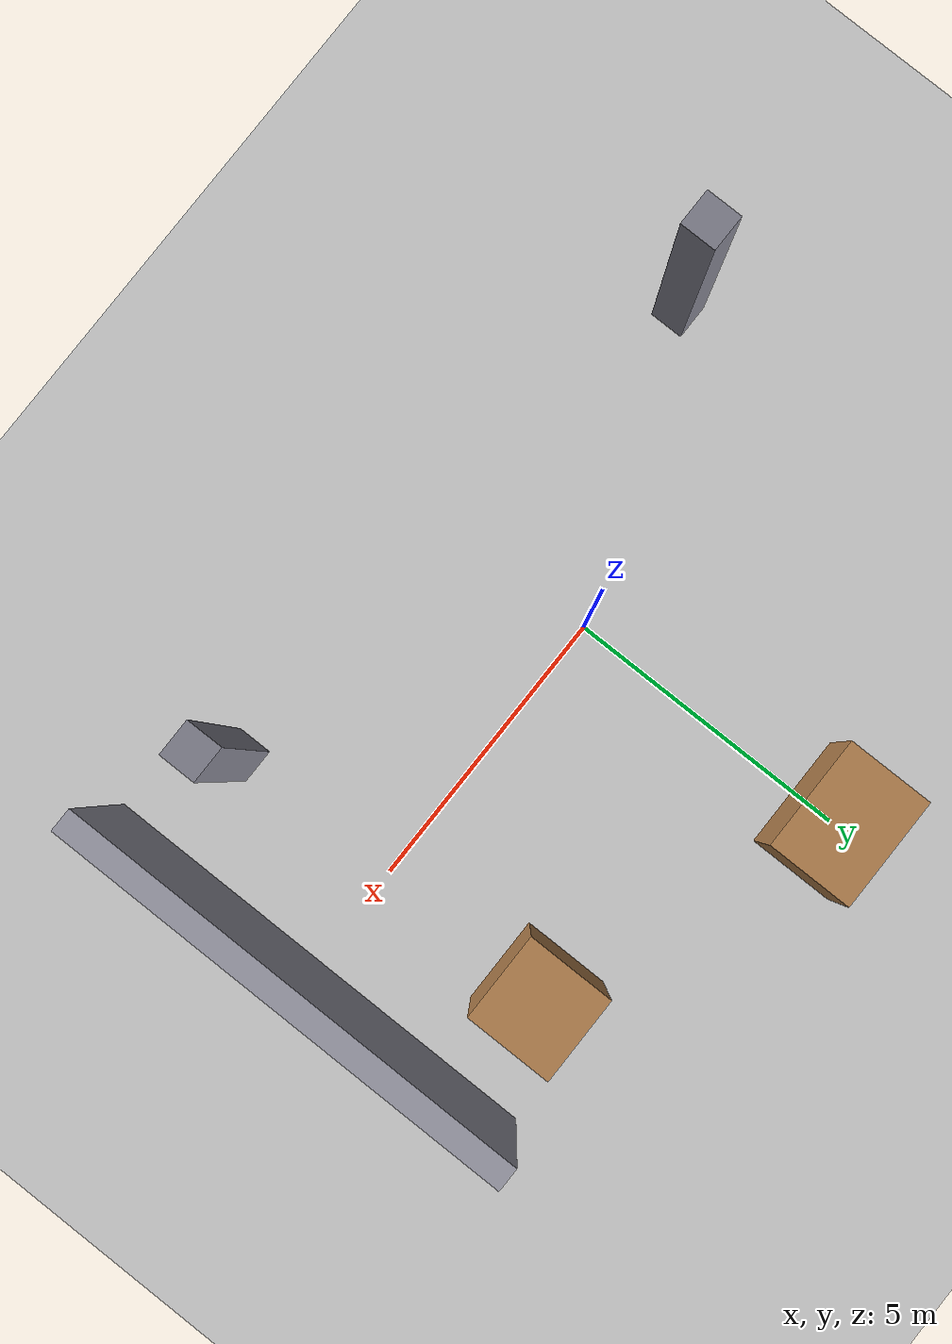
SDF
<?xml version="1.0" encoding="UTF-8"?>
<!-- A few static boxes around the figure-eight test area (drone starts at the origin facing +x). -->
<sdf version="1.9">
  <world name="boxes">
    <physics type="ode">
      <max_step_size>0.004</max_step_size>
      <real_time_factor>1.0</real_time_factor>
      <real_time_update_rate>250</real_time_update_rate>
    </physics>
    <gravity>0 0 -9.8</gravity>
    <magnetic_field>6e-06 2.3e-05 -4.2e-05</magnetic_field>
    <atmosphere type="adiabatic"/>
    <scene>
      <grid>false</grid>
      <ambient>0.4 0.4 0.4 1</ambient>
      <background>0.7 0.7 0.7 1</background>
      <shadows>false</shadows>
    </scene>
    <light name="sun" type="directional">
      <pose>0 0 50 0 0 0</pose>
      <cast_shadows>false</cast_shadows>
      <diffuse>0.9 0.9 0.9 1</diffuse>
      <specular>0.3 0.3 0.3 1</specular>
      <direction>0.3 0.6 -0.8</direction>
    </light>
    <spherical_coordinates>
      <surface_model>EARTH_WGS84</surface_model>
      <world_frame_orientation>ENU</world_frame_orientation>
      <latitude_deg>47.397971057728974</latitude_deg>
      <longitude_deg>8.546163739800146</longitude_deg>
      <elevation>0</elevation>
    </spherical_coordinates>
    <model name="ground_plane">
      <static>true</static>
      <link name="link">
        <collision name="collision">
          <geometry><plane><normal>0 0 1</normal><size>100 100</size></plane></geometry>
        </collision>
        <visual name="visual">
          <geometry><plane><normal>0 0 1</normal><size>100 100</size></plane></geometry>
          <material><ambient>0.8 0.8 0.8 1</ambient><diffuse>0.8 0.8 0.8 1</diffuse></material>
        </visual>
      </link>
    </model>
    <model name="wall_east">
      <static>true</static>
      <pose>7.0 0.0 1.5 0 0 0</pose>
      <link name="link">
        <collision name="collision"><geometry><box><size>0.4 8.0 3.0</size></box></geometry></collision>
        <visual name="visual">
          <geometry><box><size>0.4 8.0 3.0</size></box></geometry>
          <material><ambient>0.6 0.6 0.65 1</ambient><diffuse>0.6 0.6 0.65 1</diffuse></material>
        </visual>
      </link>
    </model>
    <model name="crate_ne">
      <static>true</static>
      <pose>5.0 3.0 1.0 0 0 0</pose>
      <link name="link">
        <collision name="collision"><geometry><box><size>1.5 1.5 2.0</size></box></geometry></collision>
        <visual name="visual">
          <geometry><box><size>1.5 1.5 2.0</size></box></geometry>
          <material><ambient>0.7 0.5 0.3 1</ambient><diffuse>0.7 0.5 0.3 1</diffuse></material>
        </visual>
      </link>
    </model>
    <model name="pillar_se">
      <static>true</static>
      <pose>5.0 -3.0 2.0 0 0 0</pose>
      <link name="link">
        <collision name="collision"><geometry><box><size>0.6 0.6 4.0</size></box></geometry></collision>
        <visual name="visual">
          <geometry><box><size>0.6 0.6 4.0</size></box></geometry>
          <material><ambient>0.5 0.5 0.55 1</ambient><diffuse>0.5 0.5 0.55 1</diffuse></material>
        </visual>
      </link>
    </model>
    <model name="crate_north">
      <static>true</static>
      <pose>0.0 5.0 0.75 0 0 0</pose>
      <link name="link">
        <collision name="collision"><geometry><box><size>2.0 1.5 1.5</size></box></geometry></collision>
        <visual name="visual">
          <geometry><box><size>2.0 1.5 1.5</size></box></geometry>
          <material><ambient>0.7 0.5 0.3 1</ambient><diffuse>0.7 0.5 0.3 1</diffuse></material>
        </visual>
      </link>
    </model>
    <model name="pillar_west">
      <static>true</static>
      <pose>-5.0 -2.0 2.0 0 0 0</pose>
      <link name="link">
        <collision name="collision"><geometry><box><size>0.6 0.6 4.0</size></box></geometry></collision>
        <visual name="visual">
          <geometry><box><size>0.6 0.6 4.0</size></box></geometry>
          <material><ambient>0.5 0.5 0.55 1</ambient><diffuse>0.5 0.5 0.55 1</diffuse></material>
        </visual>
      </link>
    </model>
  </world>
</sdf>
